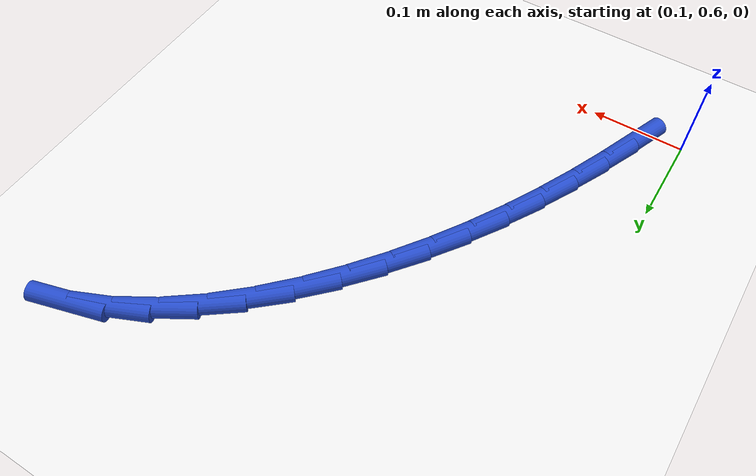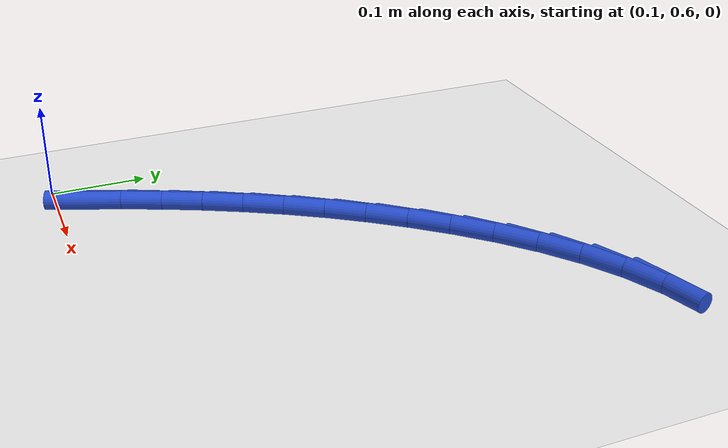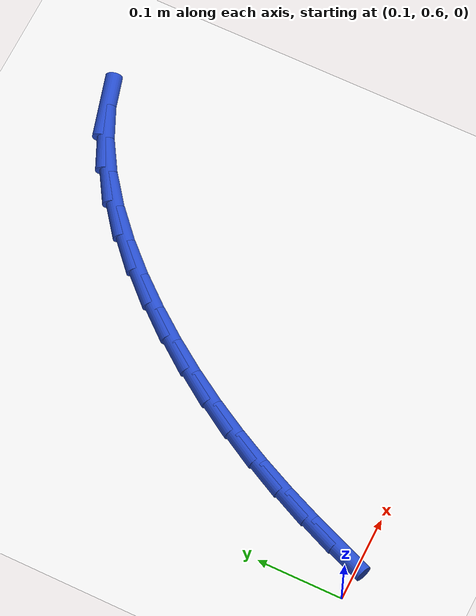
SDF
<sdf version="1.6">
 <world name="default">
  <model name="ground_plane">
   <static>1</static>
   <link name="link">
    <collision name="collision">
     <geometry><plane><normal>0 0 1</normal><size>100 100</size></plane></geometry>
     <surface><friction><ode><mu>100</mu><mu2>50</mu2></ode></friction></surface>
    </collision>
    <visual name="visual">
     <cast_shadows>0</cast_shadows>
     <geometry><plane><normal>0 0 1</normal><size>100 100</size></plane></geometry>
     <material>
      <script><uri>file://media/materials/scripts/gazebo.material</uri><name>Gazebo/WhiteGlow</name></script>
     </material>
    </visual>
   </link>
  </model>
  <model name="line">
   <link name="link_15">
    <pose>0.14666593796659913 0.6270074540855488 0.01 0 1.57 1.1959963902612292</pose>
    <collision name="collision">
     <geometry><cylinder><radius>0.01</radius><length>0.08</length></cylinder></geometry>
    </collision>
    <visual name="visual">
     <material>
      <script><name>Gazebo/Blue</name><uri>file://media/materials/scripts/gazebo.material</uri></script>
     </material>
     <geometry><cylinder><radius>0.01</radius><length>0.08</length></cylinder></geometry>
    </visual>
   </link>
   <link name="link_16">
    <pose>0.16239837538994767 0.6669988523755218 0.01 0 1.57 1.1652951197070973</pose>
    <collision name="collision">
     <geometry><cylinder><radius>0.01</radius><length>0.08</length></cylinder></geometry>
    </collision>
    <visual name="visual">
     <material>
      <script><name>Gazebo/Blue</name><uri>file://media/materials/scripts/gazebo.material</uri></script>
     </material>
     <geometry><cylinder><radius>0.01</radius><length>0.08</length></cylinder></geometry>
    </visual>
   </link>
   <link name="link_17">
    <pose>0.17935650590172997 0.706501317135111 0.01 0 1.57 1.1311748071902608</pose>
    <collision name="collision">
     <geometry><cylinder><radius>0.01</radius><length>0.08</length></cylinder></geometry>
    </collision>
    <visual name="visual">
     <material>
      <script><name>Gazebo/Blue</name><uri>file://media/materials/scripts/gazebo.material</uri></script>
     </material>
     <geometry><cylinder><radius>0.01</radius><length>0.08</length></cylinder></geometry>
    </visual>
   </link>
   <link name="link_18">
    <pose>0.19767722297472273 0.7454551898970503 0.01 0 1.57 1.093733787667848</pose>
    <collision name="collision">
     <geometry><cylinder><radius>0.01</radius><length>0.08</length></cylinder></geometry>
    </collision>
    <visual name="visual">
     <material>
      <script><name>Gazebo/Blue</name><uri>file://media/materials/scripts/gazebo.material</uri></script>
     </material>
     <geometry><cylinder><radius>0.01</radius><length>0.08</length></cylinder></geometry>
    </visual>
   </link>
   <link name="link_19">
    <pose>0.21749742008170259 0.7838008121940734 0.01 0 1.57 1.0531230459847631</pose>
    <collision name="collision">
     <geometry><cylinder><radius>0.01</radius><length>0.08</length></cylinder></geometry>
    </collision>
    <visual name="visual">
     <material>
      <script><name>Gazebo/Blue</name><uri>file://media/materials/scripts/gazebo.material</uri></script>
     </material>
     <geometry><cylinder><radius>0.01</radius><length>0.08</length></cylinder></geometry>
    </visual>
   </link>
   <link name="link_20">
    <pose>0.23895399069544634 0.8214785255589144 0.01 0 1.57 1.0095547104252511</pose>
    <collision name="collision">
     <geometry><cylinder><radius>0.01</radius><length>0.08</length></cylinder></geometry>
    </collision>
    <visual name="visual">
     <material>
      <script><name>Gazebo/Blue</name><uri>file://media/materials/scripts/gazebo.material</uri></script>
     </material>
     <geometry><cylinder><radius>0.01</radius><length>0.08</length></cylinder></geometry>
    </visual>
   </link>
   <link name="link_21">
    <pose>0.26218382828873055 0.8584286715243068 0.01 0 1.57 0.9633077590041591</pose>
    <collision name="collision">
     <geometry><cylinder><radius>0.01</radius><length>0.08</length></cylinder></geometry>
    </collision>
    <visual name="visual">
     <material>
      <script><name>Gazebo/Blue</name><uri>file://media/materials/scripts/gazebo.material</uri></script>
     </material>
     <geometry><cylinder><radius>0.01</radius><length>0.08</length></cylinder></geometry>
    </visual>
   </link>
   <link name="link_22">
    <pose>0.2873238263343321 0.8945915916229848 0.01 0 1.57 0.9147232409143099</pose>
    <collision name="collision">
     <geometry><cylinder><radius>0.01</radius><length>0.08</length></cylinder></geometry>
    </collision>
    <visual name="visual">
     <material>
      <script><name>Gazebo/Blue</name><uri>file://media/materials/scripts/gazebo.material</uri></script>
     </material>
     <geometry><cylinder><radius>0.01</radius><length>0.08</length></cylinder></geometry>
    </visual>
   </link>
   <link name="link_23">
    <pose>0.31451054101376075 0.9299067297663363 0.01 0 1.57 0.8625304937888792</pose>
    <collision name="collision">
     <geometry><cylinder><radius>0.01</radius><length>0.08</length></cylinder></geometry>
    </collision>
    <visual name="visual">
     <material>
      <script><name>Gazebo/Blue</name><uri>file://media/materials/scripts/gazebo.material</uri></script>
     </material>
     <geometry><cylinder><radius>0.01</radius><length>0.08</length></cylinder></geometry>
    </visual>
   </link>
   <link name="link_24">
    <pose>0.3438023296840615 0.964105422093742 0.01 0 1.57 0.8021036056812297</pose>
    <collision name="collision">
     <geometry><cylinder><radius>0.01</radius><length>0.08</length></cylinder></geometry>
    </collision>
    <visual name="visual">
     <material>
      <script><name>Gazebo/Blue</name><uri>file://media/materials/scripts/gazebo.material</uri></script>
     </material>
     <geometry><cylinder><radius>0.01</radius><length>0.08</length></cylinder></geometry>
    </visual>
   </link>
   <link name="link_25">
    <pose>0.3750796703886356 0.9964456208043246 0.01 0 1.57 0.7305967726556333</pose>
    <collision name="collision">
     <geometry><cylinder><radius>0.01</radius><length>0.08</length></cylinder></geometry>
    </collision>
    <visual name="visual">
     <material>
      <script><name>Gazebo/Blue</name><uri>file://media/materials/scripts/gazebo.material</uri></script>
     </material>
     <geometry><cylinder><radius>0.01</radius><length>0.08</length></cylinder></geometry>
    </visual>
   </link>
   <link name="link_26">
    <pose>0.4081984358355471 1.0261197967865683 0.01 0 1.57 0.6451273715583974</pose>
    <collision name="collision">
     <geometry><cylinder><radius>0.01</radius><length>0.08</length></cylinder></geometry>
    </collision>
    <visual name="visual">
     <material>
      <script><name>Gazebo/Blue</name><uri>file://media/materials/scripts/gazebo.material</uri></script>
     </material>
     <geometry><cylinder><radius>0.01</radius><length>0.08</length></cylinder></geometry>
    </visual>
   </link>
   <link name="link_27">
    <pose>0.4430144987328608 1.0523204209289578 0.01 0 1.57 0.5423985255488557</pose>
    <collision name="collision">
     <geometry><cylinder><radius>0.01</radius><length>0.08</length></cylinder></geometry>
    </collision>
    <visual name="visual">
     <material>
      <script><name>Gazebo/Blue</name><uri>file://media/materials/scripts/gazebo.material</uri></script>
     </material>
     <geometry><cylinder><radius>0.01</radius><length>0.08</length></cylinder></geometry>
    </visual>
   </link>
   <link name="link_28">
    <pose>0.47938373178864135 1.0742399641199776 0.01 0 1.57 0.41912113552550395</pose>
    <collision name="collision">
     <geometry><cylinder><radius>0.01</radius><length>0.08</length></cylinder></geometry>
    </collision>
    <visual name="visual">
     <material>
      <script><name>Gazebo/Blue</name><uri>file://media/materials/scripts/gazebo.material</uri></script>
     </material>
     <geometry><cylinder><radius>0.01</radius><length>0.08</length></cylinder></geometry>
    </visual>
   </link>
   <link name="link_29">
    <pose>0.5171620077109534 1.0910708972481116 0.01 0 1.57 0.27546425779916234</pose>
    <collision name="collision">
     <geometry><cylinder><radius>0.01</radius><length>0.08</length></cylinder></geometry>
    </collision>
    <visual name="visual">
     <material>
      <script><name>Gazebo/Blue</name><uri>file://media/materials/scripts/gazebo.material</uri></script>
     </material>
     <geometry><cylinder><radius>0.01</radius><length>0.08</length></cylinder></geometry>
    </visual>
   </link>
  </model>
 </world>
</sdf>
